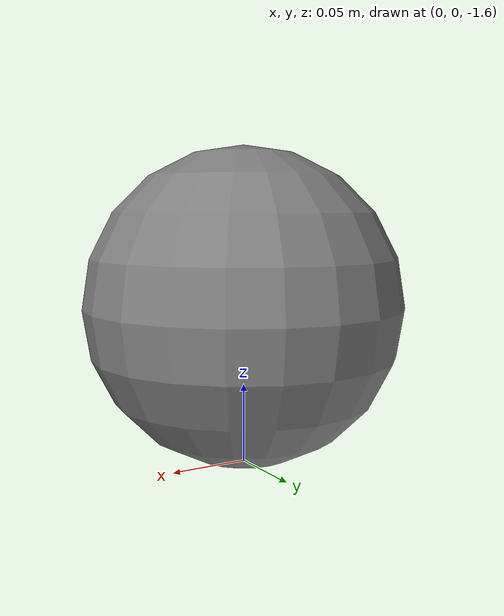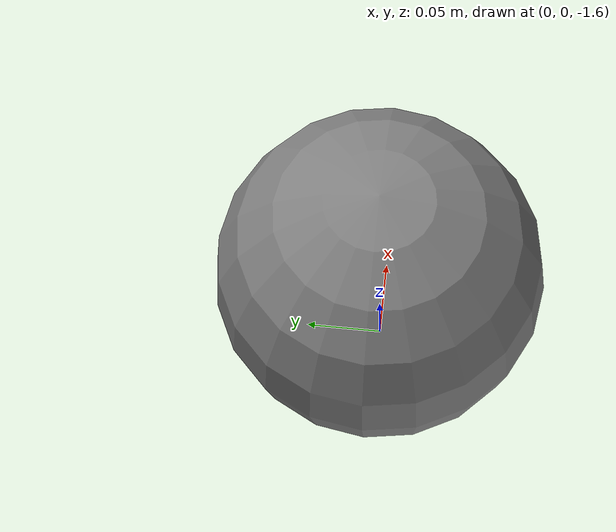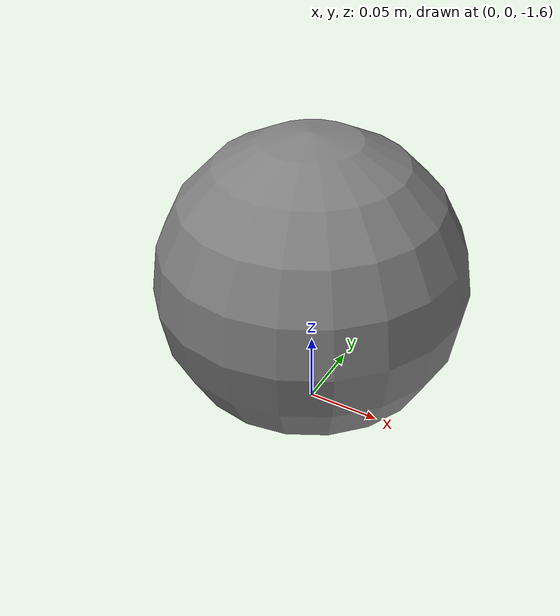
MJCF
<mujoco model="pendulum_crba">
            <option gravity="0 0 -9.81" timestep="0.001"/>
            <worldbody>
                <body name="link" pos="0 0 -1.5">
                    <joint type="hinge" axis="0 1 0"/>
                    <geom type="sphere" size="0.1" pos="0 0 0" mass="2.0"/>
                </body>
            </worldbody>
        </mujoco>
